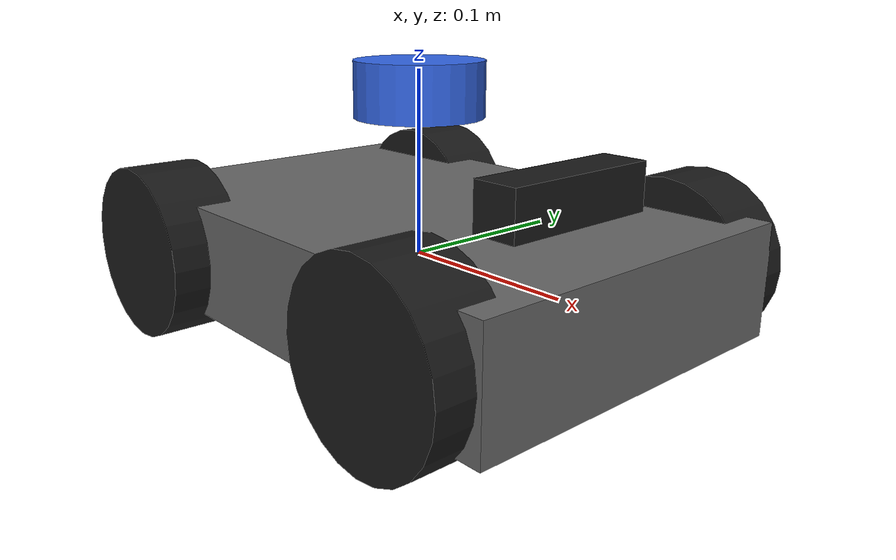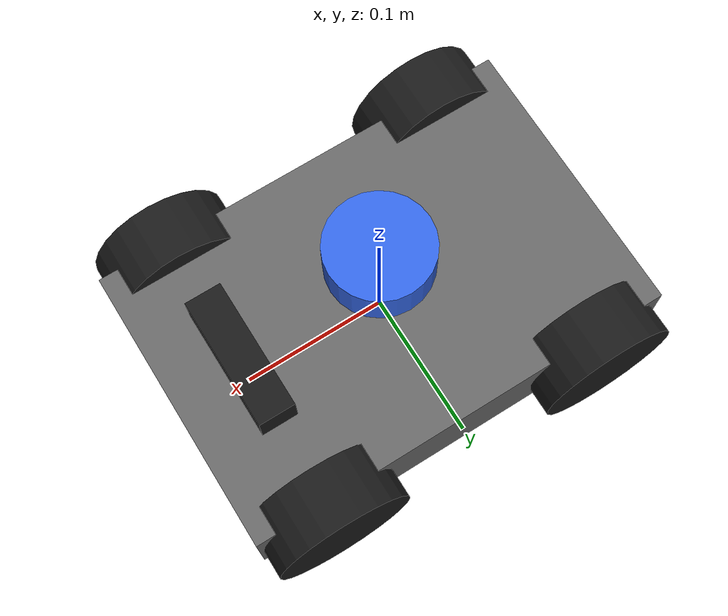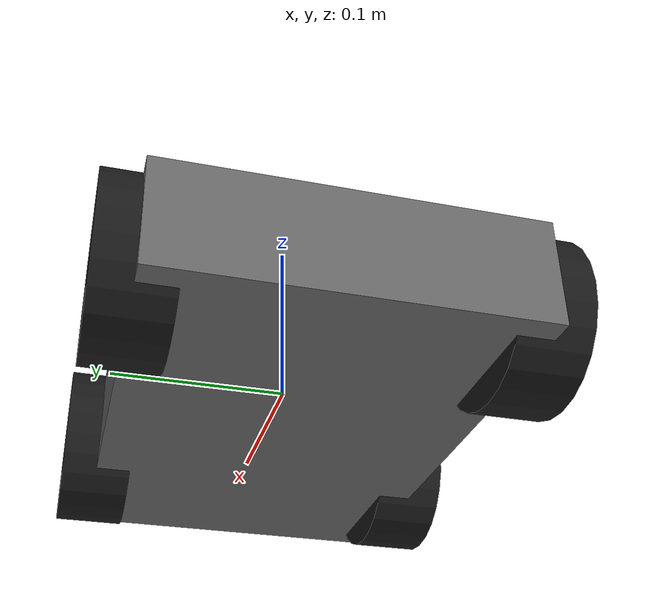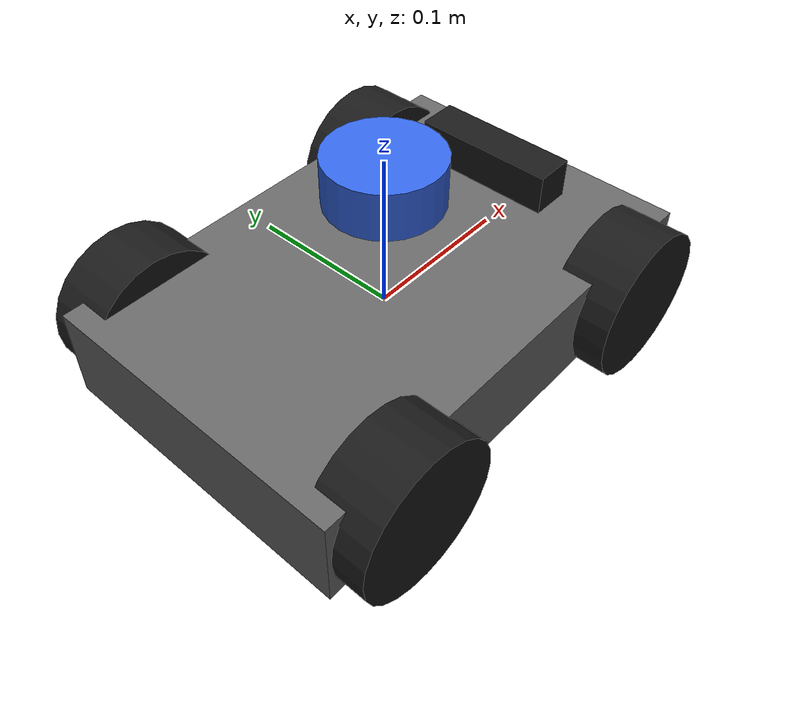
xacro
<?xml version="1.0"?>
<robot name="ars_robot" xmlns:xacro="http://www.ros.org/wiki/xacro">

  <!-- ============================ dimensions ============================ -->
  <!-- Wheel geometry comes from encoder_calibration.ino - keep in sync. -->
  <xacro:property name="wheel_diameter" value="0.095"/>
  <xacro:property name="wheel_width"    value="0.040"/>   <!-- MEASURE -->

  <xacro:property name="sep_x" value="0.20"/>             <!-- MEASURE -->
  <xacro:property name="sep_y" value="0.20"/>             <!-- MEASURE -->

  <!-- Chassis body, for visualisation and footprint only. -->
  <xacro:property name="body_x" value="0.30"/>            <!-- MEASURE -->
  <xacro:property name="body_y" value="0.20"/>            <!-- MEASURE -->
  <xacro:property name="body_z" value="0.06"/>            <!-- MEASURE -->

  <xacro:property name="lidar_x" value="0.00"/>           <!-- MEASURE -->
  <xacro:property name="lidar_y" value="0.00"/>           <!-- MEASURE -->
  <xacro:property name="lidar_z" value="0.09"/>           <!-- MEASURE -->

  <xacro:property name="lidar_yaw" value="${pi}"/>

  <xacro:property name="camera_x" value="0.10"/>          <!-- MEASURE -->
  <xacro:property name="camera_y" value="0.00"/>          <!-- MEASURE -->
  <xacro:property name="camera_z" value="0.05"/>          <!-- MEASURE -->

  <material name="grey">  <color rgba="0.4 0.4 0.4 1.0"/></material>
  <material name="black"> <color rgba="0.1 0.1 0.1 1.0"/></material>
  <material name="blue">  <color rgba="0.2 0.4 0.9 1.0"/></material>

  <!-- ============================== chassis ============================= -->
  <!-- base_link sits at the centre of the chassis, at axle height, so the
       wheel origins are symmetric about it. -->
  <link name="base_link">
    <visual>
      <geometry><box size="${body_x} ${body_y} ${body_z}"/></geometry>
      <material name="grey"/>
    </visual>
    <collision>
      <geometry><box size="${body_x} ${body_y} ${body_z}"/></geometry>
    </collision>
  </link>

  <!-- Nav2 and the costmaps expect a ground-projected frame. -->
  <link name="base_footprint"/>
  <joint name="base_footprint_joint" type="fixed">
    <parent link="base_link"/>
    <child  link="base_footprint"/>
    <origin xyz="0 0 ${-wheel_diameter/2}" rpy="0 0 0"/>
  </joint>

  <!-- =============================== wheels ============================= -->
  <!-- Continuous joints so RViz can spin them. serial_bridge publishes the
       four joint angles straight from the encoders, which is why this stack
       needs no joint_state_publisher. -->
  <xacro:macro name="wheel" params="name x y">
    <link name="${name}_wheel_link">
      <visual>
        <origin xyz="0 0 0" rpy="${pi/2} 0 0"/>
        <geometry>
          <cylinder radius="${wheel_diameter/2}" length="${wheel_width}"/>
        </geometry>
        <material name="black"/>
      </visual>
      <collision>
        <origin xyz="0 0 0" rpy="${pi/2} 0 0"/>
        <geometry>
          <cylinder radius="${wheel_diameter/2}" length="${wheel_width}"/>
        </geometry>
      </collision>
    </link>
    <joint name="${name}_wheel_joint" type="continuous">
      <parent link="base_link"/>
      <child  link="${name}_wheel_link"/>
      <origin xyz="${x} ${y} 0" rpy="0 0 0"/>
      <axis xyz="0 1 0"/>
    </joint>
  </xacro:macro>

  <!-- +y is LEFT (REP-103), so the left wheels take +sep_y/2. -->
  <xacro:wheel name="fl" x="${ sep_x/2}" y="${ sep_y/2}"/>
  <xacro:wheel name="fr" x="${ sep_x/2}" y="${-sep_y/2}"/>
  <xacro:wheel name="rl" x="${-sep_x/2}" y="${ sep_y/2}"/>
  <xacro:wheel name="rr" x="${-sep_x/2}" y="${-sep_y/2}"/>

  <!-- =============================== lidar ============================== -->
  <!-- Must stay named laser_frame: that is the frame_id the ydlidar driver
       stamps into /scan (params/ydlidar.yaml), and RTAB-Map looks the scan's
       own frame_id up in TF. -->
  <link name="laser_frame">
    <visual>
      <geometry><cylinder radius="0.035" length="0.030"/></geometry>
      <material name="blue"/>
    </visual>
  </link>
  <joint name="laser_joint" type="fixed">
    <parent link="base_link"/>
    <child  link="laser_frame"/>
    <origin xyz="${lidar_x} ${lidar_y} ${lidar_z}" rpy="0 0 ${lidar_yaw}"/>
  </joint>

  <!-- ============================== camera ============================== -->
  <!-- camera_link is the RealSense wrapper's own base frame; it publishes
       its optical frames underneath this automatically, so we only need to
       place camera_link itself. -->
  <link name="camera_link">
    <visual>
      <geometry><box size="0.025 0.090 0.025"/></geometry>
      <material name="black"/>
    </visual>
  </link>
  <joint name="camera_joint" type="fixed">
    <parent link="base_link"/>
    <child  link="camera_link"/>
    <origin xyz="${camera_x} ${camera_y} ${camera_z}" rpy="0 0 0"/>
  </joint>

</robot>
